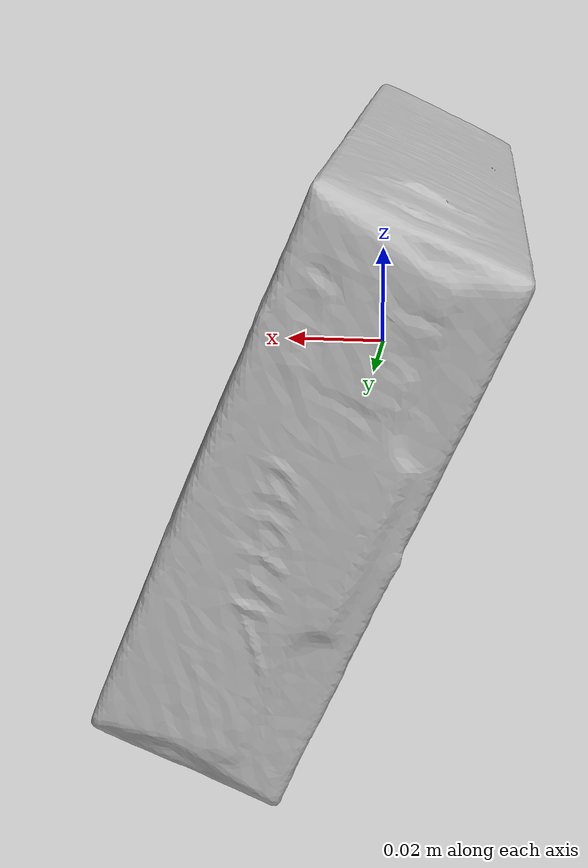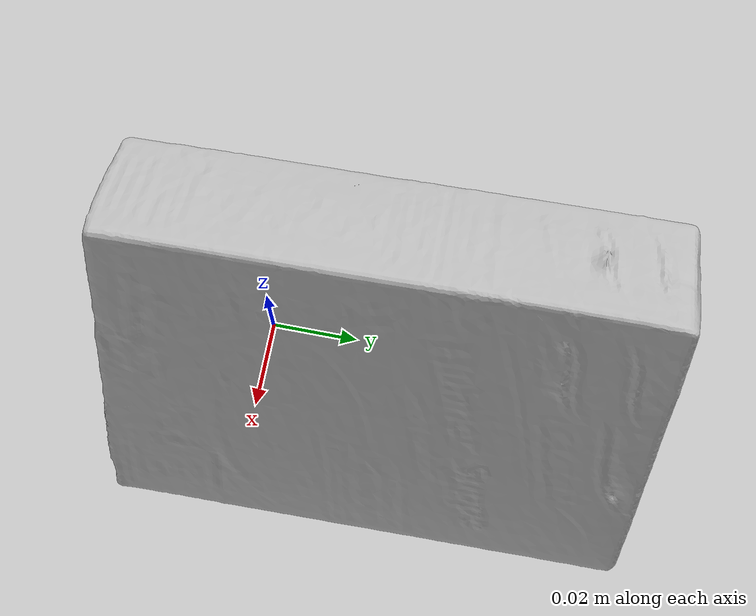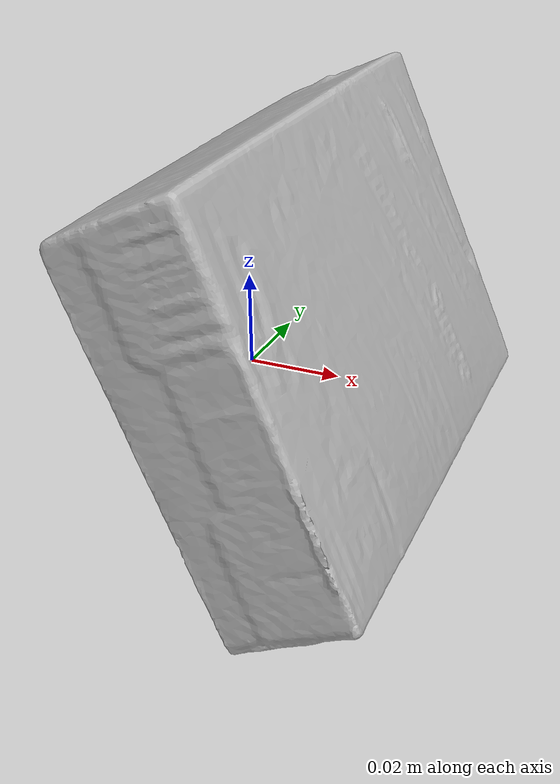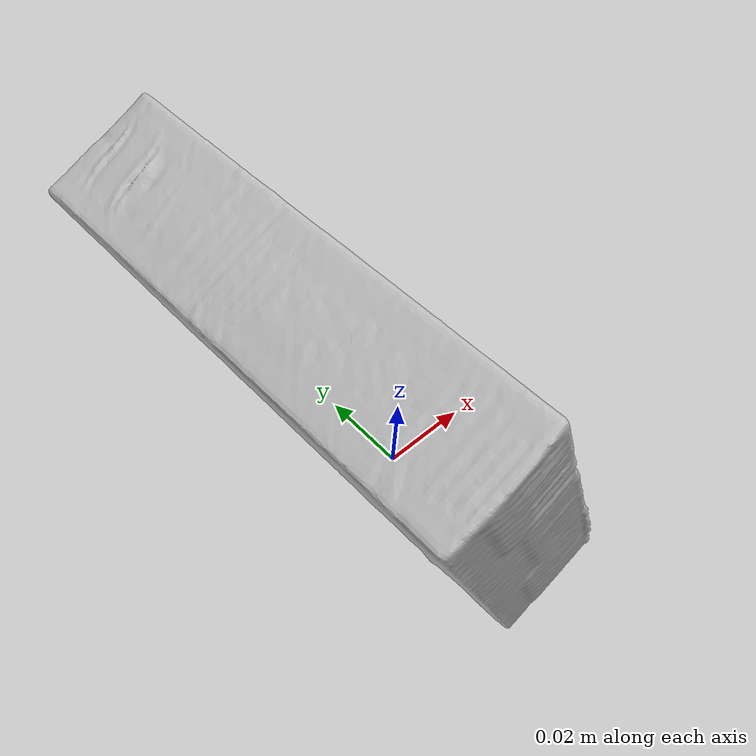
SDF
<?xml version='1.0'?>
<sdf version="1.4">
  <model name="BroccoliSoup">
    <static>false</static>
    <link name="link">
      <inertial>
        <pose>0.005990281702246245 0.028067924538085185 0.00041597663438074984 1.5670273006859725 0.3948773519608746 -3.1261340150425547</pose>
        <mass>0.040575345259851556</mass>
        <inertia>
          <ixx>8.508842459351003e-05</ixx>
          <ixy>2.4948710162447482e-21</ixy>
          <ixz>8.373074362511747e-21</ixz>
          <iyy>5.91360094235298e-05</iyy>
          <iyz>-2.3510285683772253e-20</iyz>
          <izz>3.3439598696339286e-05</izz>
        </inertia>
      </inertial>
      <collision name="collision">
        <geometry>
          <mesh>
            <!-- Use a downsampled mesh for collisions -->
            <uri>model:///BroccoliSoup/BroccoliSoup_250_collision.obj</uri>
	        </mesh>
        </geometry>
        <surface>
      </surface>
      </collision>
      <visual name="visual">
        <geometry>
          <mesh>
            <uri>model:///BroccoliSoup/BroccoliSoup_25k_tex.obj</uri>
	        </mesh>
        </geometry>
        <material>
          <script>
            <uri>model:///BroccoliSoup/BroccoliSoup.material</uri>
            <name>BroccoliSoup</name>
          </script>
        </material>
      </visual>
    </link>
  </model>
</sdf>
